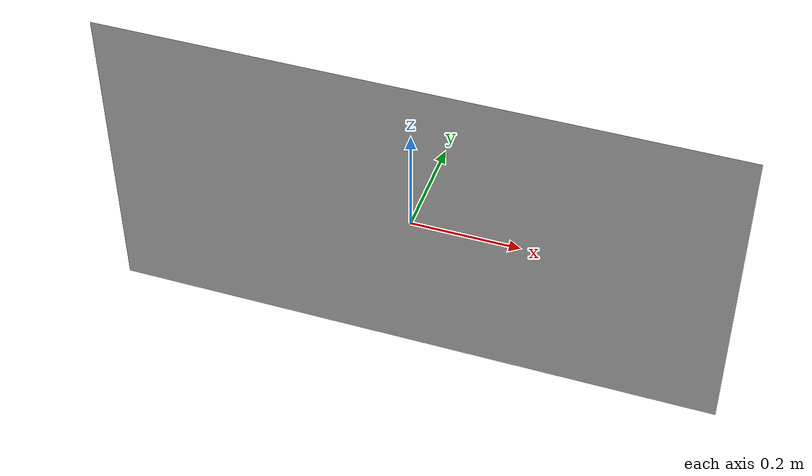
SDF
<?xml version="1.0" ?>
<sdf version="1.6">
  <model name="logotrc3">
    <static>true</static>
    <link name="link">
      <visual name="cube_visual">
        <geometry>
          <box>
            <size>1.15433 0 0.60443</size>
          </box>
        </geometry>
        <material>
          <script>
            <uri>model://logotrc3/materials/scripts/</uri>
            <uri>model://logotrc3/materials/textures/</uri>
            <name>logotrc3/FaceMaterial</name>
          </script>
        </material>
      </visual>

    </link>
  </model>
</sdf>
